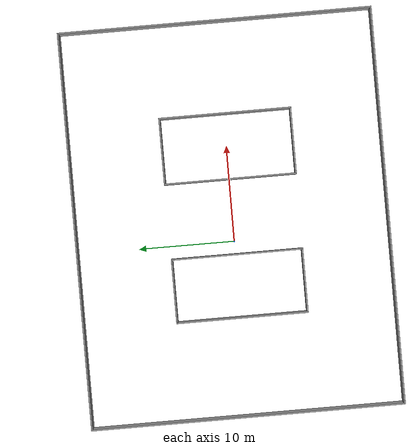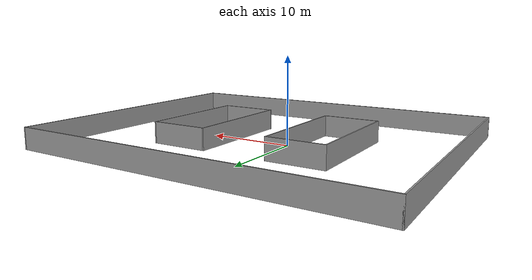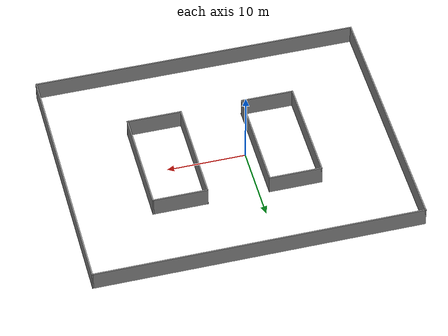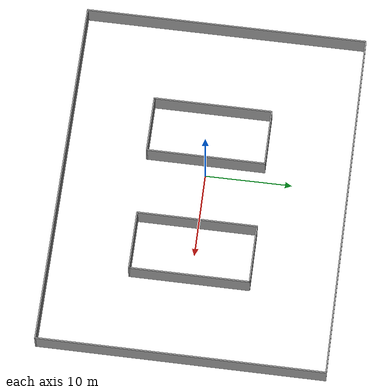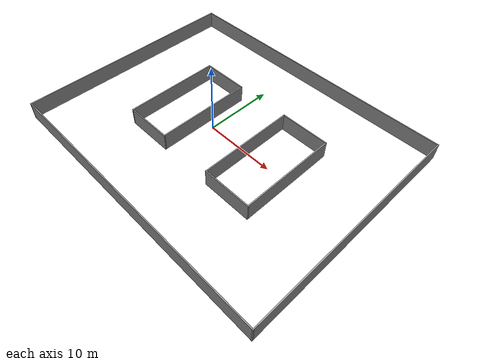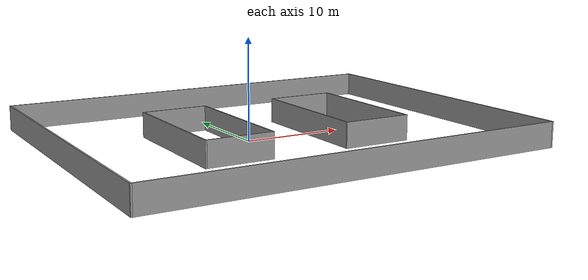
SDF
<?xml version='1.0'?>
<sdf version='1.6'>
  <model name='factoy'>
    <pose frame=''>2.41999 0.117964 0 0 -0 0</pose>
    <link name='Wall_10'>
      <collision name='Wall_10_Collision'>
        <geometry>
          <box>
            <size>13.75 0.15 2.5</size>
          </box>
        </geometry>
        <pose frame=''>0 0 1.25 0 -0 0</pose>
      </collision>
      <visual name='Wall_10_Visual'>
        <pose frame=''>0 0 1.25 0 -0 0</pose>
        <geometry>
          <box>
            <size>13.75 0.15 2.5</size>
          </box>
        </geometry>
        <material>
          <script>
            <uri>file://media/materials/scripts/gazebo.material</uri>
            <name>Gazebo/Grey</name>
          </script>
          <ambient>1 1 1 1</ambient>
        </material>
        <meta>
          <layer>0</layer>
        </meta>
      </visual>
      <pose frame=''>-10.3431 -0.269014 0 0 -0 1.5708</pose>
    </link>
    <link name='Wall_12'>
      <collision name='Wall_12_Collision'>
        <geometry>
          <box>
            <size>6.75 0.15 2.5</size>
          </box>
        </geometry>
        <pose frame=''>0 0 1.25 0 -0 0</pose>
      </collision>
      <visual name='Wall_12_Visual'>
        <pose frame=''>0 0 1.25 0 -0 0</pose>
        <geometry>
          <box>
            <size>6.75 0.15 2.5</size>
          </box>
        </geometry>
        <material>
          <script>
            <uri>file://media/materials/scripts/gazebo.material</uri>
            <name>Gazebo/Grey</name>
          </script>
          <ambient>1 1 1 1</ambient>
        </material>
        <meta>
          <layer>0</layer>
        </meta>
      </visual>
      <pose frame=''>-7.04306 6.53099 0 0 -0 0</pose>
    </link>
    <link name='Wall_13'>
      <collision name='Wall_13_Collision'>
        <geometry>
          <box>
            <size>13.75 0.15 2.5</size>
          </box>
        </geometry>
        <pose frame=''>0 0 1.25 0 -0 0</pose>
      </collision>
      <visual name='Wall_13_Visual'>
        <pose frame=''>0 0 1.25 0 -0 0</pose>
        <geometry>
          <box>
            <size>13.75 0.15 2.5</size>
          </box>
        </geometry>
        <material>
          <script>
            <uri>file://media/materials/scripts/gazebo.material</uri>
            <name>Gazebo/Grey</name>
          </script>
          <ambient>1 1 1 1</ambient>
        </material>
        <meta>
          <layer>0</layer>
        </meta>
      </visual>
      <pose frame=''>-3.74306 -0.269014 0 0 -0 -1.5708</pose>
    </link>
    <link name='Wall_14'>
      <collision name='Wall_14_Collision'>
        <geometry>
          <box>
            <size>6.75 0.15 2.5</size>
          </box>
        </geometry>
        <pose frame=''>0 0 1.25 0 -0 0</pose>
      </collision>
      <visual name='Wall_14_Visual'>
        <pose frame=''>0 0 1.25 0 -0 0</pose>
        <geometry>
          <box>
            <size>6.75 0.15 2.5</size>
          </box>
        </geometry>
        <material>
          <script>
            <uri>file://media/materials/scripts/gazebo.material</uri>
            <name>Gazebo/Grey</name>
          </script>
          <ambient>1 1 1 1</ambient>
        </material>
        <meta>
          <layer>0</layer>
        </meta>
      </visual>
      <pose frame=''>-7.04306 -7.06901 0 0 -0 3.14159</pose>
    </link>
    <link name='Wall_16'>
      <collision name='Wall_16_Collision'>
        <geometry>
          <box>
            <size>7 0.15 2.5</size>
          </box>
        </geometry>
        <pose frame=''>0 0 1.25 0 -0 0</pose>
      </collision>
      <visual name='Wall_16_Visual'>
        <pose frame=''>0 0 1.25 0 -0 0</pose>
        <geometry>
          <box>
            <size>7 0.15 2.5</size>
          </box>
        </geometry>
        <material>
          <script>
            <uri>file://media/materials/scripts/gazebo.material</uri>
            <name>Gazebo/Grey</name>
          </script>
          <ambient>1 1 1 1</ambient>
        </material>
        <meta>
          <layer>0</layer>
        </meta>
      </visual>
      <pose frame=''>7.54301 -7.09389 0 0 -0 3.14159</pose>
    </link>
    <link name='Wall_17'>
      <collision name='Wall_17_Collision'>
        <geometry>
          <box>
            <size>13.7872 0.15 2.5</size>
          </box>
        </geometry>
        <pose frame=''>0 0 1.25 0 -0 0</pose>
      </collision>
      <visual name='Wall_17_Visual'>
        <pose frame=''>0 0 1.25 0 -0 0</pose>
        <geometry>
          <box>
            <size>13.7872 0.15 2.5</size>
          </box>
        </geometry>
        <material>
          <script>
            <uri>file://media/materials/scripts/gazebo.material</uri>
            <name>Gazebo/Grey</name>
          </script>
          <ambient>1 1 1 1</ambient>
        </material>
        <meta>
          <layer>0</layer>
        </meta>
      </visual>
      <pose frame=''>4.11801 -0.248686 0 0 -0 1.5708</pose>
    </link>
    <link name='Wall_18'>
      <collision name='Wall_18_Collision'>
        <geometry>
          <box>
            <size>7 0.15 2.5</size>
          </box>
        </geometry>
        <pose frame=''>0 0 1.25 0 -0 0</pose>
      </collision>
      <visual name='Wall_18_Visual'>
        <pose frame=''>0 0 1.25 0 -0 0</pose>
        <geometry>
          <box>
            <size>7 0.15 2.5</size>
          </box>
        </geometry>
        <material>
          <script>
            <uri>file://media/materials/scripts/gazebo.material</uri>
            <name>Gazebo/Grey</name>
          </script>
          <ambient>1 1 1 1</ambient>
        </material>
        <meta>
          <layer>0</layer>
        </meta>
      </visual>
      <pose frame=''>7.54301 6.56991 0 0 -0 0</pose>
    </link>
    <link name='Wall_2'>
      <collision name='Wall_2_Collision'>
        <geometry>
          <box>
            <size>41.5 0.15 2.5</size>
          </box>
        </geometry>
        <pose frame=''>0 0 1.25 0 -0 0</pose>
      </collision>
      <visual name='Wall_2_Visual'>
        <pose frame=''>0 0 1.25 0 -0 0</pose>
        <geometry>
          <box>
            <size>41.5 0.15 2.5</size>
          </box>
        </geometry>
        <material>
          <script>
            <uri>file://media/materials/scripts/gazebo.material</uri>
            <name>Gazebo/Grey</name>
          </script>
          <ambient>1 1 1 1</ambient>
        </material>
        <meta>
          <layer>0</layer>
        </meta>
      </visual>
      <pose frame=''>-0 16.3 0 0 -0 0</pose>
    </link>
    <link name='Wall_3'>
      <collision name='Wall_3_Collision'>
        <geometry>
          <box>
            <size>32.751 0.15 2.5</size>
          </box>
        </geometry>
        <pose frame=''>0 0 1.25 0 -0 0</pose>
      </collision>
      <visual name='Wall_3_Visual'>
        <pose frame=''>0 0 1.25 0 -0 0</pose>
        <geometry>
          <box>
            <size>32.751 0.15 2.5</size>
          </box>
        </geometry>
        <material>
          <script>
            <uri>file://media/materials/scripts/gazebo.material</uri>
            <name>Gazebo/Grey</name>
          </script>
          <ambient>1 1 1 1</ambient>
        </material>
        <meta>
          <layer>0</layer>
        </meta>
      </visual>
      <pose frame=''>20.675 -0 0 0 -0 -1.5708</pose>
    </link>
    <link name='Wall_4'>
      <collision name='Wall_4_Collision'>
        <geometry>
          <box>
            <size>41.5 0.15 2.5</size>
          </box>
        </geometry>
        <pose frame=''>0 0 1.25 0 -0 0</pose>
      </collision>
      <visual name='Wall_4_Visual'>
        <pose frame=''>0 0 1.25 0 -0 0</pose>
        <geometry>
          <box>
            <size>41.5 0.15 2.5</size>
          </box>
        </geometry>
        <material>
          <script>
            <uri>file://media/materials/scripts/gazebo.material</uri>
            <name>Gazebo/Grey</name>
          </script>
          <ambient>1 1 1 1</ambient>
        </material>
        <meta>
          <layer>0</layer>
        </meta>
      </visual>
      <pose frame=''>-0 -16.3 0 0 -0 3.14159</pose>
    </link>
    <link name='Wall_5'>
      <collision name='Wall_5_Collision'>
        <geometry>
          <box>
            <size>32.75 0.15 2.5</size>
          </box>
        </geometry>
        <pose frame=''>0 0 1.25 0 -0 0</pose>
      </collision>
      <visual name='Wall_5_Visual'>
        <pose frame=''>0 0 1.25 0 -0 0</pose>
        <geometry>
          <box>
            <size>32.75 0.15 2.5</size>
          </box>
        </geometry>
        <material>
          <script>
            <uri>file://media/materials/scripts/gazebo.material</uri>
            <name>Gazebo/Grey</name>
          </script>
          <ambient>1 1 1 1</ambient>
        </material>
        <meta>
          <layer>0</layer>
        </meta>
      </visual>
      <pose frame=''>-20.675 -0 0 0 -0 1.5708</pose>
    </link>
    <link name='Wall_8'>
      <collision name='Wall_8_Collision'>
        <geometry>
          <box>
            <size>13.7872 0.15 2.5</size>
          </box>
        </geometry>
        <pose frame=''>0 0 1.25 0 -0 0</pose>
      </collision>
      <visual name='Wall_8_Visual'>
        <pose frame=''>0 0 1.25 0 -0 0</pose>
        <geometry>
          <box>
            <size>13.7872 0.15 2.5</size>
          </box>
        </geometry>
        <material>
          <script>
            <uri>file://media/materials/scripts/gazebo.material</uri>
            <name>Gazebo/Grey</name>
          </script>
          <ambient>1 1 1 1</ambient>
        </material>
        <meta>
          <layer>0</layer>
        </meta>
      </visual>
      <pose frame=''>10.968 -0.248686 0 0 -0 -1.5708</pose>
    </link>
    <static>1</static>
  </model>
</sdf>
